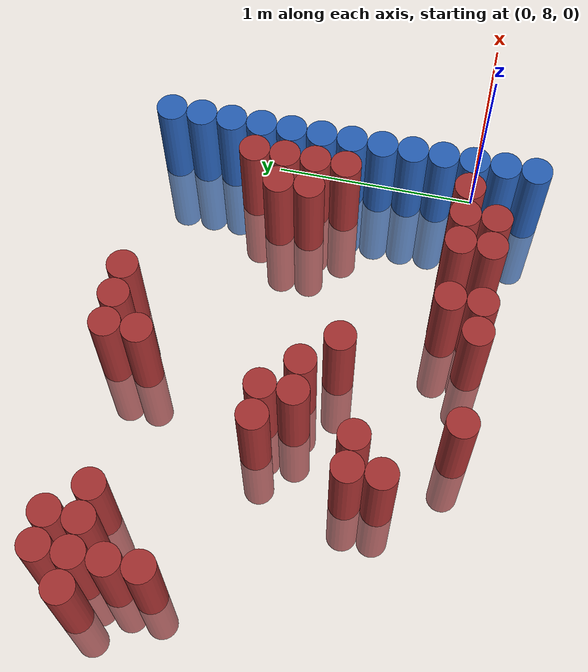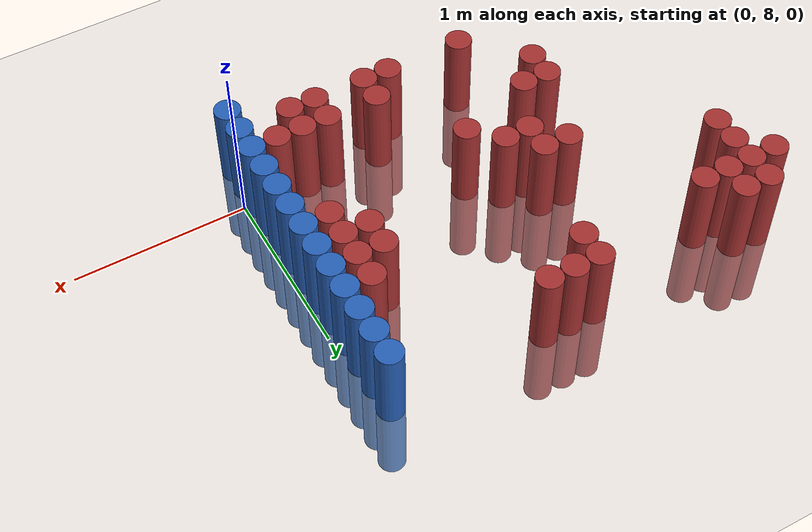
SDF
<sdf version="1.6">
 <world name="default">
  <model name="ground_plane">
   <static>1</static>
   <link name="link">
    <collision name="collision">
     <geometry><plane><normal>0 0 1</normal><size>100 100</size></plane></geometry>
     <surface><friction><ode><mu>100</mu><mu2>50</mu2></ode></friction></surface>
    </collision>
    <visual name="visual">
     <cast_shadows>0</cast_shadows>
     <geometry><plane><normal>0 0 1</normal><size>100 100</size></plane></geometry>
     <material>
      <script><uri>file://media/materials/scripts/gazebo.material</uri><name>Gazebo/Grey</name></script>
     </material>
    </visual>
   </link>
  </model>
  <model name="unit_cylinder_215">
   <static>1</static>
   <pose>-2.475000 9.375000 0.000000 0.000000 0.000000 0.000000</pose>
   <link name="link">
    <inertial>
     <mass>1</mass>
     <inertia><ixx>0.145833</ixx><ixy>0</ixy><ixz>0</ixz><iyy>0.145833</iyy><iyz>0</iyz><izz>0.125</izz></inertia>
    </inertial>
    <collision name="collision">
     <geometry><cylinder><radius>0.075000</radius><length>1</length></cylinder></geometry>
    </collision>
    <visual name="visual">
     <geometry><cylinder><radius>0.075000</radius><length>1</length></cylinder></geometry>
     <material>
      <ambient>0.648000 0.192000 0.192000 1</ambient>
      <diffuse>0.648000 0.192000 0.192000 1</diffuse>
     </material>
     <material>
      <script><name>Gazebo/Grey</name><uri>file://media/materials/scripts/gazebo.material</uri></script>
     </material>
    </visual>
   </link>
  </model>
  <model name="unit_cylinder_216">
   <static>1</static>
   <pose>-2.325000 9.075000 0.000000 0.000000 0.000000 0.000000</pose>
   <link name="link">
    <inertial>
     <mass>1</mass>
     <inertia><ixx>0.145833</ixx><ixy>0</ixy><ixz>0</ixz><iyy>0.145833</iyy><iyz>0</iyz><izz>0.125</izz></inertia>
    </inertial>
    <collision name="collision">
     <geometry><cylinder><radius>0.075000</radius><length>1</length></cylinder></geometry>
    </collision>
    <visual name="visual">
     <geometry><cylinder><radius>0.075000</radius><length>1</length></cylinder></geometry>
     <material>
      <ambient>0.648000 0.192000 0.192000 1</ambient>
      <diffuse>0.648000 0.192000 0.192000 1</diffuse>
     </material>
     <material>
      <script><name>Gazebo/Grey</name><uri>file://media/materials/scripts/gazebo.material</uri></script>
     </material>
    </visual>
   </link>
  </model>
  <model name="unit_cylinder_217">
   <static>1</static>
   <pose>-2.325000 9.225000 0.000000 0.000000 0.000000 0.000000</pose>
   <link name="link">
    <inertial>
     <mass>1</mass>
     <inertia><ixx>0.145833</ixx><ixy>0</ixy><ixz>0</ixz><iyy>0.145833</iyy><iyz>0</iyz><izz>0.125</izz></inertia>
    </inertial>
    <collision name="collision">
     <geometry><cylinder><radius>0.075000</radius><length>1</length></cylinder></geometry>
    </collision>
    <visual name="visual">
     <geometry><cylinder><radius>0.075000</radius><length>1</length></cylinder></geometry>
     <material>
      <ambient>0.648000 0.192000 0.192000 1</ambient>
      <diffuse>0.648000 0.192000 0.192000 1</diffuse>
     </material>
     <material>
      <script><name>Gazebo/Grey</name><uri>file://media/materials/scripts/gazebo.material</uri></script>
     </material>
    </visual>
   </link>
  </model>
  <model name="unit_cylinder_218">
   <static>1</static>
   <pose>-2.325000 9.375000 0.000000 0.000000 0.000000 0.000000</pose>
   <link name="link">
    <inertial>
     <mass>1</mass>
     <inertia><ixx>0.145833</ixx><ixy>0</ixy><ixz>0</ixz><iyy>0.145833</iyy><iyz>0</iyz><izz>0.125</izz></inertia>
    </inertial>
    <collision name="collision">
     <geometry><cylinder><radius>0.075000</radius><length>1</length></cylinder></geometry>
    </collision>
    <visual name="visual">
     <geometry><cylinder><radius>0.075000</radius><length>1</length></cylinder></geometry>
     <material>
      <ambient>0.648000 0.192000 0.192000 1</ambient>
      <diffuse>0.648000 0.192000 0.192000 1</diffuse>
     </material>
     <material>
      <script><name>Gazebo/Grey</name><uri>file://media/materials/scripts/gazebo.material</uri></script>
     </material>
    </visual>
   </link>
  </model>
  <model name="unit_cylinder_219">
   <static>1</static>
   <pose>-2.325000 9.525000 0.000000 0.000000 0.000000 0.000000</pose>
   <link name="link">
    <inertial>
     <mass>1</mass>
     <inertia><ixx>0.145833</ixx><ixy>0</ixy><ixz>0</ixz><iyy>0.145833</iyy><iyz>0</iyz><izz>0.125</izz></inertia>
    </inertial>
    <collision name="collision">
     <geometry><cylinder><radius>0.075000</radius><length>1</length></cylinder></geometry>
    </collision>
    <visual name="visual">
     <geometry><cylinder><radius>0.075000</radius><length>1</length></cylinder></geometry>
     <material>
      <ambient>0.648000 0.192000 0.192000 1</ambient>
      <diffuse>0.648000 0.192000 0.192000 1</diffuse>
     </material>
     <material>
      <script><name>Gazebo/Grey</name><uri>file://media/materials/scripts/gazebo.material</uri></script>
     </material>
    </visual>
   </link>
  </model>
  <model name="unit_cylinder_220">
   <static>1</static>
   <pose>-2.175000 9.375000 0.000000 0.000000 0.000000 0.000000</pose>
   <link name="link">
    <inertial>
     <mass>1</mass>
     <inertia><ixx>0.145833</ixx><ixy>0</ixy><ixz>0</ixz><iyy>0.145833</iyy><iyz>0</iyz><izz>0.125</izz></inertia>
    </inertial>
    <collision name="collision">
     <geometry><cylinder><radius>0.075000</radius><length>1</length></cylinder></geometry>
    </collision>
    <visual name="visual">
     <geometry><cylinder><radius>0.075000</radius><length>1</length></cylinder></geometry>
     <material>
      <ambient>0.648000 0.192000 0.192000 1</ambient>
      <diffuse>0.648000 0.192000 0.192000 1</diffuse>
     </material>
     <material>
      <script><name>Gazebo/Grey</name><uri>file://media/materials/scripts/gazebo.material</uri></script>
     </material>
    </visual>
   </link>
  </model>
  <model name="unit_cylinder_221">
   <static>1</static>
   <pose>-2.175000 9.525000 0.000000 0.000000 0.000000 0.000000</pose>
   <link name="link">
    <inertial>
     <mass>1</mass>
     <inertia><ixx>0.145833</ixx><ixy>0</ixy><ixz>0</ixz><iyy>0.145833</iyy><iyz>0</iyz><izz>0.125</izz></inertia>
    </inertial>
    <collision name="collision">
     <geometry><cylinder><radius>0.075000</radius><length>1</length></cylinder></geometry>
    </collision>
    <visual name="visual">
     <geometry><cylinder><radius>0.075000</radius><length>1</length></cylinder></geometry>
     <material>
      <ambient>0.648000 0.192000 0.192000 1</ambient>
      <diffuse>0.648000 0.192000 0.192000 1</diffuse>
     </material>
     <material>
      <script><name>Gazebo/Grey</name><uri>file://media/materials/scripts/gazebo.material</uri></script>
     </material>
    </visual>
   </link>
  </model>
  <model name="unit_cylinder_222">
   <static>1</static>
   <pose>-2.025000 9.375000 0.000000 0.000000 0.000000 0.000000</pose>
   <link name="link">
    <inertial>
     <mass>1</mass>
     <inertia><ixx>0.145833</ixx><ixy>0</ixy><ixz>0</ixz><iyy>0.145833</iyy><iyz>0</iyz><izz>0.125</izz></inertia>
    </inertial>
    <collision name="collision">
     <geometry><cylinder><radius>0.075000</radius><length>1</length></cylinder></geometry>
    </collision>
    <visual name="visual">
     <geometry><cylinder><radius>0.075000</radius><length>1</length></cylinder></geometry>
     <material>
      <ambient>0.648000 0.192000 0.192000 1</ambient>
      <diffuse>0.648000 0.192000 0.192000 1</diffuse>
     </material>
     <material>
      <script><name>Gazebo/Grey</name><uri>file://media/materials/scripts/gazebo.material</uri></script>
     </material>
    </visual>
   </link>
  </model>
  <model name="unit_cylinder_223">
   <static>1</static>
   <pose>-1.725000 8.175000 0.000000 0.000000 0.000000 0.000000</pose>
   <link name="link">
    <inertial>
     <mass>1</mass>
     <inertia><ixx>0.145833</ixx><ixy>0</ixy><ixz>0</ixz><iyy>0.145833</iyy><iyz>0</iyz><izz>0.125</izz></inertia>
    </inertial>
    <collision name="collision">
     <geometry><cylinder><radius>0.075000</radius><length>1</length></cylinder></geometry>
    </collision>
    <visual name="visual">
     <geometry><cylinder><radius>0.075000</radius><length>1</length></cylinder></geometry>
     <material>
      <ambient>0.648000 0.192000 0.192000 1</ambient>
      <diffuse>0.648000 0.192000 0.192000 1</diffuse>
     </material>
     <material>
      <script><name>Gazebo/Grey</name><uri>file://media/materials/scripts/gazebo.material</uri></script>
     </material>
    </visual>
   </link>
  </model>
  <model name="unit_cylinder_224">
   <static>1</static>
   <pose>-1.725000 8.325000 0.000000 0.000000 0.000000 0.000000</pose>
   <link name="link">
    <inertial>
     <mass>1</mass>
     <inertia><ixx>0.145833</ixx><ixy>0</ixy><ixz>0</ixz><iyy>0.145833</iyy><iyz>0</iyz><izz>0.125</izz></inertia>
    </inertial>
    <collision name="collision">
     <geometry><cylinder><radius>0.075000</radius><length>1</length></cylinder></geometry>
    </collision>
    <visual name="visual">
     <geometry><cylinder><radius>0.075000</radius><length>1</length></cylinder></geometry>
     <material>
      <ambient>0.648000 0.192000 0.192000 1</ambient>
      <diffuse>0.648000 0.192000 0.192000 1</diffuse>
     </material>
     <material>
      <script><name>Gazebo/Grey</name><uri>file://media/materials/scripts/gazebo.material</uri></script>
     </material>
    </visual>
   </link>
  </model>
  <model name="unit_cylinder_228">
   <static>1</static>
   <pose>-1.575000 8.325000 0.000000 0.000000 0.000000 0.000000</pose>
   <link name="link">
    <inertial>
     <mass>1</mass>
     <inertia><ixx>0.145833</ixx><ixy>0</ixy><ixz>0</ixz><iyy>0.145833</iyy><iyz>0</iyz><izz>0.125</izz></inertia>
    </inertial>
    <collision name="collision">
     <geometry><cylinder><radius>0.075000</radius><length>1</length></cylinder></geometry>
    </collision>
    <visual name="visual">
     <geometry><cylinder><radius>0.075000</radius><length>1</length></cylinder></geometry>
     <material>
      <ambient>0.648000 0.192000 0.192000 1</ambient>
      <diffuse>0.648000 0.192000 0.192000 1</diffuse>
     </material>
     <material>
      <script><name>Gazebo/Grey</name><uri>file://media/materials/scripts/gazebo.material</uri></script>
     </material>
    </visual>
   </link>
  </model>
  <model name="unit_cylinder_229">
   <static>1</static>
   <pose>-1.575000 8.775000 0.000000 0.000000 0.000000 0.000000</pose>
   <link name="link">
    <inertial>
     <mass>1</mass>
     <inertia><ixx>0.145833</ixx><ixy>0</ixy><ixz>0</ixz><iyy>0.145833</iyy><iyz>0</iyz><izz>0.125</izz></inertia>
    </inertial>
    <collision name="collision">
     <geometry><cylinder><radius>0.075000</radius><length>1</length></cylinder></geometry>
    </collision>
    <visual name="visual">
     <geometry><cylinder><radius>0.075000</radius><length>1</length></cylinder></geometry>
     <material>
      <ambient>0.648000 0.192000 0.192000 1</ambient>
      <diffuse>0.648000 0.192000 0.192000 1</diffuse>
     </material>
     <material>
      <script><name>Gazebo/Grey</name><uri>file://media/materials/scripts/gazebo.material</uri></script>
     </material>
    </visual>
   </link>
  </model>
  <model name="unit_cylinder_234">
   <static>1</static>
   <pose>-1.425000 7.875000 0.000000 0.000000 0.000000 0.000000</pose>
   <link name="link">
    <inertial>
     <mass>1</mass>
     <inertia><ixx>0.145833</ixx><ixy>0</ixy><ixz>0</ixz><iyy>0.145833</iyy><iyz>0</iyz><izz>0.125</izz></inertia>
    </inertial>
    <collision name="collision">
     <geometry><cylinder><radius>0.075000</radius><length>1</length></cylinder></geometry>
    </collision>
    <visual name="visual">
     <geometry><cylinder><radius>0.075000</radius><length>1</length></cylinder></geometry>
     <material>
      <ambient>0.648000 0.192000 0.192000 1</ambient>
      <diffuse>0.648000 0.192000 0.192000 1</diffuse>
     </material>
     <material>
      <script><name>Gazebo/Grey</name><uri>file://media/materials/scripts/gazebo.material</uri></script>
     </material>
    </visual>
   </link>
  </model>
  <model name="unit_cylinder_235">
   <static>1</static>
   <pose>-1.425000 8.625000 0.000000 0.000000 0.000000 0.000000</pose>
   <link name="link">
    <inertial>
     <mass>1</mass>
     <inertia><ixx>0.145833</ixx><ixy>0</ixy><ixz>0</ixz><iyy>0.145833</iyy><iyz>0</iyz><izz>0.125</izz></inertia>
    </inertial>
    <collision name="collision">
     <geometry><cylinder><radius>0.075000</radius><length>1</length></cylinder></geometry>
    </collision>
    <visual name="visual">
     <geometry><cylinder><radius>0.075000</radius><length>1</length></cylinder></geometry>
     <material>
      <ambient>0.648000 0.192000 0.192000 1</ambient>
      <diffuse>0.648000 0.192000 0.192000 1</diffuse>
     </material>
     <material>
      <script><name>Gazebo/Grey</name><uri>file://media/materials/scripts/gazebo.material</uri></script>
     </material>
    </visual>
   </link>
  </model>
  <model name="unit_cylinder_236">
   <static>1</static>
   <pose>-1.425000 8.775000 0.000000 0.000000 0.000000 0.000000</pose>
   <link name="link">
    <inertial>
     <mass>1</mass>
     <inertia><ixx>0.145833</ixx><ixy>0</ixy><ixz>0</ixz><iyy>0.145833</iyy><iyz>0</iyz><izz>0.125</izz></inertia>
    </inertial>
    <collision name="collision">
     <geometry><cylinder><radius>0.075000</radius><length>1</length></cylinder></geometry>
    </collision>
    <visual name="visual">
     <geometry><cylinder><radius>0.075000</radius><length>1</length></cylinder></geometry>
     <material>
      <ambient>0.648000 0.192000 0.192000 1</ambient>
      <diffuse>0.648000 0.192000 0.192000 1</diffuse>
     </material>
     <material>
      <script><name>Gazebo/Grey</name><uri>file://media/materials/scripts/gazebo.material</uri></script>
     </material>
    </visual>
   </link>
  </model>
  <model name="unit_cylinder_243">
   <static>1</static>
   <pose>-1.275000 8.625000 0.000000 0.000000 0.000000 0.000000</pose>
   <link name="link">
    <inertial>
     <mass>1</mass>
     <inertia><ixx>0.145833</ixx><ixy>0</ixy><ixz>0</ixz><iyy>0.145833</iyy><iyz>0</iyz><izz>0.125</izz></inertia>
    </inertial>
    <collision name="collision">
     <geometry><cylinder><radius>0.075000</radius><length>1</length></cylinder></geometry>
    </collision>
    <visual name="visual">
     <geometry><cylinder><radius>0.075000</radius><length>1</length></cylinder></geometry>
     <material>
      <ambient>0.648000 0.192000 0.192000 1</ambient>
      <diffuse>0.648000 0.192000 0.192000 1</diffuse>
     </material>
     <material>
      <script><name>Gazebo/Grey</name><uri>file://media/materials/scripts/gazebo.material</uri></script>
     </material>
    </visual>
   </link>
  </model>
  <model name="unit_cylinder_244">
   <static>1</static>
   <pose>-1.275000 9.375000 0.000000 0.000000 0.000000 0.000000</pose>
   <link name="link">
    <inertial>
     <mass>1</mass>
     <inertia><ixx>0.145833</ixx><ixy>0</ixy><ixz>0</ixz><iyy>0.145833</iyy><iyz>0</iyz><izz>0.125</izz></inertia>
    </inertial>
    <collision name="collision">
     <geometry><cylinder><radius>0.075000</radius><length>1</length></cylinder></geometry>
    </collision>
    <visual name="visual">
     <geometry><cylinder><radius>0.075000</radius><length>1</length></cylinder></geometry>
     <material>
      <ambient>0.648000 0.192000 0.192000 1</ambient>
      <diffuse>0.648000 0.192000 0.192000 1</diffuse>
     </material>
     <material>
      <script><name>Gazebo/Grey</name><uri>file://media/materials/scripts/gazebo.material</uri></script>
     </material>
    </visual>
   </link>
  </model>
  <model name="unit_cylinder_245">
   <static>1</static>
   <pose>-1.275000 9.525000 0.000000 0.000000 0.000000 0.000000</pose>
   <link name="link">
    <inertial>
     <mass>1</mass>
     <inertia><ixx>0.145833</ixx><ixy>0</ixy><ixz>0</ixz><iyy>0.145833</iyy><iyz>0</iyz><izz>0.125</izz></inertia>
    </inertial>
    <collision name="collision">
     <geometry><cylinder><radius>0.075000</radius><length>1</length></cylinder></geometry>
    </collision>
    <visual name="visual">
     <geometry><cylinder><radius>0.075000</radius><length>1</length></cylinder></geometry>
     <material>
      <ambient>0.648000 0.192000 0.192000 1</ambient>
      <diffuse>0.648000 0.192000 0.192000 1</diffuse>
     </material>
     <material>
      <script><name>Gazebo/Grey</name><uri>file://media/materials/scripts/gazebo.material</uri></script>
     </material>
    </visual>
   </link>
  </model>
  <model name="unit_cylinder_251">
   <static>1</static>
   <pose>-1.125000 8.475000 0.000000 0.000000 0.000000 0.000000</pose>
   <link name="link">
    <inertial>
     <mass>1</mass>
     <inertia><ixx>0.145833</ixx><ixy>0</ixy><ixz>0</ixz><iyy>0.145833</iyy><iyz>0</iyz><izz>0.125</izz></inertia>
    </inertial>
    <collision name="collision">
     <geometry><cylinder><radius>0.075000</radius><length>1</length></cylinder></geometry>
    </collision>
    <visual name="visual">
     <geometry><cylinder><radius>0.075000</radius><length>1</length></cylinder></geometry>
     <material>
      <ambient>0.648000 0.192000 0.192000 1</ambient>
      <diffuse>0.648000 0.192000 0.192000 1</diffuse>
     </material>
     <material>
      <script><name>Gazebo/Grey</name><uri>file://media/materials/scripts/gazebo.material</uri></script>
     </material>
    </visual>
   </link>
  </model>
  <model name="unit_cylinder_252">
   <static>1</static>
   <pose>-1.125000 9.525000 0.000000 0.000000 0.000000 0.000000</pose>
   <link name="link">
    <inertial>
     <mass>1</mass>
     <inertia><ixx>0.145833</ixx><ixy>0</ixy><ixz>0</ixz><iyy>0.145833</iyy><iyz>0</iyz><izz>0.125</izz></inertia>
    </inertial>
    <collision name="collision">
     <geometry><cylinder><radius>0.075000</radius><length>1</length></cylinder></geometry>
    </collision>
    <visual name="visual">
     <geometry><cylinder><radius>0.075000</radius><length>1</length></cylinder></geometry>
     <material>
      <ambient>0.648000 0.192000 0.192000 1</ambient>
      <diffuse>0.648000 0.192000 0.192000 1</diffuse>
     </material>
     <material>
      <script><name>Gazebo/Grey</name><uri>file://media/materials/scripts/gazebo.material</uri></script>
     </material>
    </visual>
   </link>
  </model>
  <model name="unit_cylinder_262">
   <static>1</static>
   <pose>-0.975000 7.875000 0.000000 0.000000 0.000000 0.000000</pose>
   <link name="link">
    <inertial>
     <mass>1</mass>
     <inertia><ixx>0.145833</ixx><ixy>0</ixy><ixz>0</ixz><iyy>0.145833</iyy><iyz>0</iyz><izz>0.125</izz></inertia>
    </inertial>
    <collision name="collision">
     <geometry><cylinder><radius>0.075000</radius><length>1</length></cylinder></geometry>
    </collision>
    <visual name="visual">
     <geometry><cylinder><radius>0.075000</radius><length>1</length></cylinder></geometry>
     <material>
      <ambient>0.648000 0.192000 0.192000 1</ambient>
      <diffuse>0.648000 0.192000 0.192000 1</diffuse>
     </material>
     <material>
      <script><name>Gazebo/Grey</name><uri>file://media/materials/scripts/gazebo.material</uri></script>
     </material>
    </visual>
   </link>
  </model>
  <model name="unit_cylinder_263">
   <static>1</static>
   <pose>-0.975000 9.525000 0.000000 0.000000 0.000000 0.000000</pose>
   <link name="link">
    <inertial>
     <mass>1</mass>
     <inertia><ixx>0.145833</ixx><ixy>0</ixy><ixz>0</ixz><iyy>0.145833</iyy><iyz>0</iyz><izz>0.125</izz></inertia>
    </inertial>
    <collision name="collision">
     <geometry><cylinder><radius>0.075000</radius><length>1</length></cylinder></geometry>
    </collision>
    <visual name="visual">
     <geometry><cylinder><radius>0.075000</radius><length>1</length></cylinder></geometry>
     <material>
      <ambient>0.648000 0.192000 0.192000 1</ambient>
      <diffuse>0.648000 0.192000 0.192000 1</diffuse>
     </material>
     <material>
      <script><name>Gazebo/Grey</name><uri>file://media/materials/scripts/gazebo.material</uri></script>
     </material>
    </visual>
   </link>
  </model>
  <model name="unit_cylinder_269">
   <static>1</static>
   <pose>-0.825000 7.875000 0.000000 0.000000 0.000000 0.000000</pose>
   <link name="link">
    <inertial>
     <mass>1</mass>
     <inertia><ixx>0.145833</ixx><ixy>0</ixy><ixz>0</ixz><iyy>0.145833</iyy><iyz>0</iyz><izz>0.125</izz></inertia>
    </inertial>
    <collision name="collision">
     <geometry><cylinder><radius>0.075000</radius><length>1</length></cylinder></geometry>
    </collision>
    <visual name="visual">
     <geometry><cylinder><radius>0.075000</radius><length>1</length></cylinder></geometry>
     <material>
      <ambient>0.648000 0.192000 0.192000 1</ambient>
      <diffuse>0.648000 0.192000 0.192000 1</diffuse>
     </material>
     <material>
      <script><name>Gazebo/Grey</name><uri>file://media/materials/scripts/gazebo.material</uri></script>
     </material>
    </visual>
   </link>
  </model>
  <model name="unit_cylinder_270">
   <static>1</static>
   <pose>-0.825000 8.025000 0.000000 0.000000 0.000000 0.000000</pose>
   <link name="link">
    <inertial>
     <mass>1</mass>
     <inertia><ixx>0.145833</ixx><ixy>0</ixy><ixz>0</ixz><iyy>0.145833</iyy><iyz>0</iyz><izz>0.125</izz></inertia>
    </inertial>
    <collision name="collision">
     <geometry><cylinder><radius>0.075000</radius><length>1</length></cylinder></geometry>
    </collision>
    <visual name="visual">
     <geometry><cylinder><radius>0.075000</radius><length>1</length></cylinder></geometry>
     <material>
      <ambient>0.648000 0.192000 0.192000 1</ambient>
      <diffuse>0.648000 0.192000 0.192000 1</diffuse>
     </material>
     <material>
      <script><name>Gazebo/Grey</name><uri>file://media/materials/scripts/gazebo.material</uri></script>
     </material>
    </visual>
   </link>
  </model>
  <model name="unit_cylinder_280">
   <static>1</static>
   <pose>-0.525000 7.875000 0.000000 0.000000 0.000000 0.000000</pose>
   <link name="link">
    <inertial>
     <mass>1</mass>
     <inertia><ixx>0.145833</ixx><ixy>0</ixy><ixz>0</ixz><iyy>0.145833</iyy><iyz>0</iyz><izz>0.125</izz></inertia>
    </inertial>
    <collision name="collision">
     <geometry><cylinder><radius>0.075000</radius><length>1</length></cylinder></geometry>
    </collision>
    <visual name="visual">
     <geometry><cylinder><radius>0.075000</radius><length>1</length></cylinder></geometry>
     <material>
      <ambient>0.648000 0.192000 0.192000 1</ambient>
      <diffuse>0.648000 0.192000 0.192000 1</diffuse>
     </material>
     <material>
      <script><name>Gazebo/Grey</name><uri>file://media/materials/scripts/gazebo.material</uri></script>
     </material>
    </visual>
   </link>
  </model>
  <model name="unit_cylinder_281">
   <static>1</static>
   <pose>-0.525000 8.025000 0.000000 0.000000 0.000000 0.000000</pose>
   <link name="link">
    <inertial>
     <mass>1</mass>
     <inertia><ixx>0.145833</ixx><ixy>0</ixy><ixz>0</ixz><iyy>0.145833</iyy><iyz>0</iyz><izz>0.125</izz></inertia>
    </inertial>
    <collision name="collision">
     <geometry><cylinder><radius>0.075000</radius><length>1</length></cylinder></geometry>
    </collision>
    <visual name="visual">
     <geometry><cylinder><radius>0.075000</radius><length>1</length></cylinder></geometry>
     <material>
      <ambient>0.648000 0.192000 0.192000 1</ambient>
      <diffuse>0.648000 0.192000 0.192000 1</diffuse>
     </material>
     <material>
      <script><name>Gazebo/Grey</name><uri>file://media/materials/scripts/gazebo.material</uri></script>
     </material>
    </visual>
   </link>
  </model>
  <model name="unit_cylinder_286">
   <static>1</static>
   <pose>-0.375000 7.875000 0.000000 0.000000 0.000000 0.000000</pose>
   <link name="link">
    <inertial>
     <mass>1</mass>
     <inertia><ixx>0.145833</ixx><ixy>0</ixy><ixz>0</ixz><iyy>0.145833</iyy><iyz>0</iyz><izz>0.125</izz></inertia>
    </inertial>
    <collision name="collision">
     <geometry><cylinder><radius>0.075000</radius><length>1</length></cylinder></geometry>
    </collision>
    <visual name="visual">
     <geometry><cylinder><radius>0.075000</radius><length>1</length></cylinder></geometry>
     <material>
      <ambient>0.648000 0.192000 0.192000 1</ambient>
      <diffuse>0.648000 0.192000 0.192000 1</diffuse>
     </material>
     <material>
      <script><name>Gazebo/Grey</name><uri>file://media/materials/scripts/gazebo.material</uri></script>
     </material>
    </visual>
   </link>
  </model>
  <model name="unit_cylinder_287">
   <static>1</static>
   <pose>-0.375000 8.025000 0.000000 0.000000 0.000000 0.000000</pose>
   <link name="link">
    <inertial>
     <mass>1</mass>
     <inertia><ixx>0.145833</ixx><ixy>0</ixy><ixz>0</ixz><iyy>0.145833</iyy><iyz>0</iyz><izz>0.125</izz></inertia>
    </inertial>
    <collision name="collision">
     <geometry><cylinder><radius>0.075000</radius><length>1</length></cylinder></geometry>
    </collision>
    <visual name="visual">
     <geometry><cylinder><radius>0.075000</radius><length>1</length></cylinder></geometry>
     <material>
      <ambient>0.648000 0.192000 0.192000 1</ambient>
      <diffuse>0.648000 0.192000 0.192000 1</diffuse>
     </material>
     <material>
      <script><name>Gazebo/Grey</name><uri>file://media/materials/scripts/gazebo.material</uri></script>
     </material>
    </visual>
   </link>
  </model>
  <model name="unit_cylinder_288">
   <static>1</static>
   <pose>-0.375000 8.775000 0.000000 0.000000 0.000000 0.000000</pose>
   <link name="link">
    <inertial>
     <mass>1</mass>
     <inertia><ixx>0.145833</ixx><ixy>0</ixy><ixz>0</ixz><iyy>0.145833</iyy><iyz>0</iyz><izz>0.125</izz></inertia>
    </inertial>
    <collision name="collision">
     <geometry><cylinder><radius>0.075000</radius><length>1</length></cylinder></geometry>
    </collision>
    <visual name="visual">
     <geometry><cylinder><radius>0.075000</radius><length>1</length></cylinder></geometry>
     <material>
      <ambient>0.648000 0.192000 0.192000 1</ambient>
      <diffuse>0.648000 0.192000 0.192000 1</diffuse>
     </material>
     <material>
      <script><name>Gazebo/Grey</name><uri>file://media/materials/scripts/gazebo.material</uri></script>
     </material>
    </visual>
   </link>
  </model>
  <model name="unit_cylinder_289">
   <static>1</static>
   <pose>-0.375000 8.925000 0.000000 0.000000 0.000000 0.000000</pose>
   <link name="link">
    <inertial>
     <mass>1</mass>
     <inertia><ixx>0.145833</ixx><ixy>0</ixy><ixz>0</ixz><iyy>0.145833</iyy><iyz>0</iyz><izz>0.125</izz></inertia>
    </inertial>
    <collision name="collision">
     <geometry><cylinder><radius>0.075000</radius><length>1</length></cylinder></geometry>
    </collision>
    <visual name="visual">
     <geometry><cylinder><radius>0.075000</radius><length>1</length></cylinder></geometry>
     <material>
      <ambient>0.648000 0.192000 0.192000 1</ambient>
      <diffuse>0.648000 0.192000 0.192000 1</diffuse>
     </material>
     <material>
      <script><name>Gazebo/Grey</name><uri>file://media/materials/scripts/gazebo.material</uri></script>
     </material>
    </visual>
   </link>
  </model>
  <model name="unit_cylinder_299">
   <static>1</static>
   <pose>-0.225000 8.025000 0.000000 0.000000 0.000000 0.000000</pose>
   <link name="link">
    <inertial>
     <mass>1</mass>
     <inertia><ixx>0.145833</ixx><ixy>0</ixy><ixz>0</ixz><iyy>0.145833</iyy><iyz>0</iyz><izz>0.125</izz></inertia>
    </inertial>
    <collision name="collision">
     <geometry><cylinder><radius>0.075000</radius><length>1</length></cylinder></geometry>
    </collision>
    <visual name="visual">
     <geometry><cylinder><radius>0.075000</radius><length>1</length></cylinder></geometry>
     <material>
      <ambient>0.648000 0.192000 0.192000 1</ambient>
      <diffuse>0.648000 0.192000 0.192000 1</diffuse>
     </material>
     <material>
      <script><name>Gazebo/Grey</name><uri>file://media/materials/scripts/gazebo.material</uri></script>
     </material>
    </visual>
   </link>
  </model>
  <model name="unit_cylinder_300">
   <static>1</static>
   <pose>-0.225000 8.625000 0.000000 0.000000 0.000000 0.000000</pose>
   <link name="link">
    <inertial>
     <mass>1</mass>
     <inertia><ixx>0.145833</ixx><ixy>0</ixy><ixz>0</ixz><iyy>0.145833</iyy><iyz>0</iyz><izz>0.125</izz></inertia>
    </inertial>
    <collision name="collision">
     <geometry><cylinder><radius>0.075000</radius><length>1</length></cylinder></geometry>
    </collision>
    <visual name="visual">
     <geometry><cylinder><radius>0.075000</radius><length>1</length></cylinder></geometry>
     <material>
      <ambient>0.648000 0.192000 0.192000 1</ambient>
      <diffuse>0.648000 0.192000 0.192000 1</diffuse>
     </material>
     <material>
      <script><name>Gazebo/Grey</name><uri>file://media/materials/scripts/gazebo.material</uri></script>
     </material>
    </visual>
   </link>
  </model>
  <model name="unit_cylinder_301">
   <static>1</static>
   <pose>-0.225000 8.775000 0.000000 0.000000 0.000000 0.000000</pose>
   <link name="link">
    <inertial>
     <mass>1</mass>
     <inertia><ixx>0.145833</ixx><ixy>0</ixy><ixz>0</ixz><iyy>0.145833</iyy><iyz>0</iyz><izz>0.125</izz></inertia>
    </inertial>
    <collision name="collision">
     <geometry><cylinder><radius>0.075000</radius><length>1</length></cylinder></geometry>
    </collision>
    <visual name="visual">
     <geometry><cylinder><radius>0.075000</radius><length>1</length></cylinder></geometry>
     <material>
      <ambient>0.648000 0.192000 0.192000 1</ambient>
      <diffuse>0.648000 0.192000 0.192000 1</diffuse>
     </material>
     <material>
      <script><name>Gazebo/Grey</name><uri>file://media/materials/scripts/gazebo.material</uri></script>
     </material>
    </visual>
   </link>
  </model>
  <model name="unit_cylinder_302">
   <static>1</static>
   <pose>-0.225000 8.925000 0.000000 0.000000 0.000000 0.000000</pose>
   <link name="link">
    <inertial>
     <mass>1</mass>
     <inertia><ixx>0.145833</ixx><ixy>0</ixy><ixz>0</ixz><iyy>0.145833</iyy><iyz>0</iyz><izz>0.125</izz></inertia>
    </inertial>
    <collision name="collision">
     <geometry><cylinder><radius>0.075000</radius><length>1</length></cylinder></geometry>
    </collision>
    <visual name="visual">
     <geometry><cylinder><radius>0.075000</radius><length>1</length></cylinder></geometry>
     <material>
      <ambient>0.648000 0.192000 0.192000 1</ambient>
      <diffuse>0.648000 0.192000 0.192000 1</diffuse>
     </material>
     <material>
      <script><name>Gazebo/Grey</name><uri>file://media/materials/scripts/gazebo.material</uri></script>
     </material>
    </visual>
   </link>
  </model>
  <model name="unit_cylinder_303">
   <static>1</static>
   <pose>-0.225000 9.075000 0.000000 0.000000 0.000000 0.000000</pose>
   <link name="link">
    <inertial>
     <mass>1</mass>
     <inertia><ixx>0.145833</ixx><ixy>0</ixy><ixz>0</ixz><iyy>0.145833</iyy><iyz>0</iyz><izz>0.125</izz></inertia>
    </inertial>
    <collision name="collision">
     <geometry><cylinder><radius>0.075000</radius><length>1</length></cylinder></geometry>
    </collision>
    <visual name="visual">
     <geometry><cylinder><radius>0.075000</radius><length>1</length></cylinder></geometry>
     <material>
      <ambient>0.648000 0.192000 0.192000 1</ambient>
      <diffuse>0.648000 0.192000 0.192000 1</diffuse>
     </material>
     <material>
      <script><name>Gazebo/Grey</name><uri>file://media/materials/scripts/gazebo.material</uri></script>
     </material>
    </visual>
   </link>
  </model>
  <model name="unit_cylinder_321">
   <static>1</static>
   <pose>-0.075000 7.725000 0.000000 0.000000 0.000000 0.000000</pose>
   <link name="link">
    <inertial>
     <mass>1</mass>
     <inertia><ixx>0.145833</ixx><ixy>0</ixy><ixz>0</ixz><iyy>0.145833</iyy><iyz>0</iyz><izz>0.125</izz></inertia>
    </inertial>
    <collision name="collision">
     <geometry><cylinder><radius>0.075000</radius><length>1</length></cylinder></geometry>
    </collision>
    <visual name="visual">
     <geometry><cylinder><radius>0.075000</radius><length>1</length></cylinder></geometry>
     <material>
      <ambient>0.152000 0.379000 0.720000 1</ambient>
      <diffuse>0.152000 0.379000 0.720000 1</diffuse>
     </material>
     <material>
      <script><name>Gazebo/Grey</name><uri>file://media/materials/scripts/gazebo.material</uri></script>
     </material>
    </visual>
   </link>
  </model>
  <model name="unit_cylinder_322">
   <static>1</static>
   <pose>-0.075000 7.875000 0.000000 0.000000 0.000000 0.000000</pose>
   <link name="link">
    <inertial>
     <mass>1</mass>
     <inertia><ixx>0.145833</ixx><ixy>0</ixy><ixz>0</ixz><iyy>0.145833</iyy><iyz>0</iyz><izz>0.125</izz></inertia>
    </inertial>
    <collision name="collision">
     <geometry><cylinder><radius>0.075000</radius><length>1</length></cylinder></geometry>
    </collision>
    <visual name="visual">
     <geometry><cylinder><radius>0.075000</radius><length>1</length></cylinder></geometry>
     <material>
      <ambient>0.152000 0.379000 0.720000 1</ambient>
      <diffuse>0.152000 0.379000 0.720000 1</diffuse>
     </material>
     <material>
      <script><name>Gazebo/Grey</name><uri>file://media/materials/scripts/gazebo.material</uri></script>
     </material>
    </visual>
   </link>
  </model>
  <model name="unit_cylinder_323">
   <static>1</static>
   <pose>-0.075000 8.025000 0.000000 0.000000 0.000000 0.000000</pose>
   <link name="link">
    <inertial>
     <mass>1</mass>
     <inertia><ixx>0.145833</ixx><ixy>0</ixy><ixz>0</ixz><iyy>0.145833</iyy><iyz>0</iyz><izz>0.125</izz></inertia>
    </inertial>
    <collision name="collision">
     <geometry><cylinder><radius>0.075000</radius><length>1</length></cylinder></geometry>
    </collision>
    <visual name="visual">
     <geometry><cylinder><radius>0.075000</radius><length>1</length></cylinder></geometry>
     <material>
      <ambient>0.152000 0.379000 0.720000 1</ambient>
      <diffuse>0.152000 0.379000 0.720000 1</diffuse>
     </material>
     <material>
      <script><name>Gazebo/Grey</name><uri>file://media/materials/scripts/gazebo.material</uri></script>
     </material>
    </visual>
   </link>
  </model>
  <model name="unit_cylinder_324">
   <static>1</static>
   <pose>-0.075000 8.175000 0.000000 0.000000 0.000000 0.000000</pose>
   <link name="link">
    <inertial>
     <mass>1</mass>
     <inertia><ixx>0.145833</ixx><ixy>0</ixy><ixz>0</ixz><iyy>0.145833</iyy><iyz>0</iyz><izz>0.125</izz></inertia>
    </inertial>
    <collision name="collision">
     <geometry><cylinder><radius>0.075000</radius><length>1</length></cylinder></geometry>
    </collision>
    <visual name="visual">
     <geometry><cylinder><radius>0.075000</radius><length>1</length></cylinder></geometry>
     <material>
      <ambient>0.152000 0.379000 0.720000 1</ambient>
      <diffuse>0.152000 0.379000 0.720000 1</diffuse>
     </material>
     <material>
      <script><name>Gazebo/Grey</name><uri>file://media/materials/scripts/gazebo.material</uri></script>
     </material>
    </visual>
   </link>
  </model>
  <model name="unit_cylinder_325">
   <static>1</static>
   <pose>-0.075000 8.325000 0.000000 0.000000 0.000000 0.000000</pose>
   <link name="link">
    <inertial>
     <mass>1</mass>
     <inertia><ixx>0.145833</ixx><ixy>0</ixy><ixz>0</ixz><iyy>0.145833</iyy><iyz>0</iyz><izz>0.125</izz></inertia>
    </inertial>
    <collision name="collision">
     <geometry><cylinder><radius>0.075000</radius><length>1</length></cylinder></geometry>
    </collision>
    <visual name="visual">
     <geometry><cylinder><radius>0.075000</radius><length>1</length></cylinder></geometry>
     <material>
      <ambient>0.152000 0.379000 0.720000 1</ambient>
      <diffuse>0.152000 0.379000 0.720000 1</diffuse>
     </material>
     <material>
      <script><name>Gazebo/Grey</name><uri>file://media/materials/scripts/gazebo.material</uri></script>
     </material>
    </visual>
   </link>
  </model>
  <model name="unit_cylinder_326">
   <static>1</static>
   <pose>-0.075000 8.475000 0.000000 0.000000 0.000000 0.000000</pose>
   <link name="link">
    <inertial>
     <mass>1</mass>
     <inertia><ixx>0.145833</ixx><ixy>0</ixy><ixz>0</ixz><iyy>0.145833</iyy><iyz>0</iyz><izz>0.125</izz></inertia>
    </inertial>
    <collision name="collision">
     <geometry><cylinder><radius>0.075000</radius><length>1</length></cylinder></geometry>
    </collision>
    <visual name="visual">
     <geometry><cylinder><radius>0.075000</radius><length>1</length></cylinder></geometry>
     <material>
      <ambient>0.152000 0.379000 0.720000 1</ambient>
      <diffuse>0.152000 0.379000 0.720000 1</diffuse>
     </material>
     <material>
      <script><name>Gazebo/Grey</name><uri>file://media/materials/scripts/gazebo.material</uri></script>
     </material>
    </visual>
   </link>
  </model>
  <model name="unit_cylinder_327">
   <static>1</static>
   <pose>-0.075000 8.625000 0.000000 0.000000 0.000000 0.000000</pose>
   <link name="link">
    <inertial>
     <mass>1</mass>
     <inertia><ixx>0.145833</ixx><ixy>0</ixy><ixz>0</ixz><iyy>0.145833</iyy><iyz>0</iyz><izz>0.125</izz></inertia>
    </inertial>
    <collision name="collision">
     <geometry><cylinder><radius>0.075000</radius><length>1</length></cylinder></geometry>
    </collision>
    <visual name="visual">
     <geometry><cylinder><radius>0.075000</radius><length>1</length></cylinder></geometry>
     <material>
      <ambient>0.152000 0.379000 0.720000 1</ambient>
      <diffuse>0.152000 0.379000 0.720000 1</diffuse>
     </material>
     <material>
      <script><name>Gazebo/Grey</name><uri>file://media/materials/scripts/gazebo.material</uri></script>
     </material>
    </visual>
   </link>
  </model>
  <model name="unit_cylinder_328">
   <static>1</static>
   <pose>-0.075000 8.775000 0.000000 0.000000 0.000000 0.000000</pose>
   <link name="link">
    <inertial>
     <mass>1</mass>
     <inertia><ixx>0.145833</ixx><ixy>0</ixy><ixz>0</ixz><iyy>0.145833</iyy><iyz>0</iyz><izz>0.125</izz></inertia>
    </inertial>
    <collision name="collision">
     <geometry><cylinder><radius>0.075000</radius><length>1</length></cylinder></geometry>
    </collision>
    <visual name="visual">
     <geometry><cylinder><radius>0.075000</radius><length>1</length></cylinder></geometry>
     <material>
      <ambient>0.152000 0.379000 0.720000 1</ambient>
      <diffuse>0.152000 0.379000 0.720000 1</diffuse>
     </material>
     <material>
      <script><name>Gazebo/Grey</name><uri>file://media/materials/scripts/gazebo.material</uri></script>
     </material>
    </visual>
   </link>
  </model>
  <model name="unit_cylinder_329">
   <static>1</static>
   <pose>-0.075000 8.925000 0.000000 0.000000 0.000000 0.000000</pose>
   <link name="link">
    <inertial>
     <mass>1</mass>
     <inertia><ixx>0.145833</ixx><ixy>0</ixy><ixz>0</ixz><iyy>0.145833</iyy><iyz>0</iyz><izz>0.125</izz></inertia>
    </inertial>
    <collision name="collision">
     <geometry><cylinder><radius>0.075000</radius><length>1</length></cylinder></geometry>
    </collision>
    <visual name="visual">
     <geometry><cylinder><radius>0.075000</radius><length>1</length></cylinder></geometry>
     <material>
      <ambient>0.152000 0.379000 0.720000 1</ambient>
      <diffuse>0.152000 0.379000 0.720000 1</diffuse>
     </material>
     <material>
      <script><name>Gazebo/Grey</name><uri>file://media/materials/scripts/gazebo.material</uri></script>
     </material>
    </visual>
   </link>
  </model>
  <model name="unit_cylinder_330">
   <static>1</static>
   <pose>-0.075000 9.075000 0.000000 0.000000 0.000000 0.000000</pose>
   <link name="link">
    <inertial>
     <mass>1</mass>
     <inertia><ixx>0.145833</ixx><ixy>0</ixy><ixz>0</ixz><iyy>0.145833</iyy><iyz>0</iyz><izz>0.125</izz></inertia>
    </inertial>
    <collision name="collision">
     <geometry><cylinder><radius>0.075000</radius><length>1</length></cylinder></geometry>
    </collision>
    <visual name="visual">
     <geometry><cylinder><radius>0.075000</radius><length>1</length></cylinder></geometry>
     <material>
      <ambient>0.152000 0.379000 0.720000 1</ambient>
      <diffuse>0.152000 0.379000 0.720000 1</diffuse>
     </material>
     <material>
      <script><name>Gazebo/Grey</name><uri>file://media/materials/scripts/gazebo.material</uri></script>
     </material>
    </visual>
   </link>
  </model>
  <model name="unit_cylinder_331">
   <static>1</static>
   <pose>-0.075000 9.225000 0.000000 0.000000 0.000000 0.000000</pose>
   <link name="link">
    <inertial>
     <mass>1</mass>
     <inertia><ixx>0.145833</ixx><ixy>0</ixy><ixz>0</ixz><iyy>0.145833</iyy><iyz>0</iyz><izz>0.125</izz></inertia>
    </inertial>
    <collision name="collision">
     <geometry><cylinder><radius>0.075000</radius><length>1</length></cylinder></geometry>
    </collision>
    <visual name="visual">
     <geometry><cylinder><radius>0.075000</radius><length>1</length></cylinder></geometry>
     <material>
      <ambient>0.152000 0.379000 0.720000 1</ambient>
      <diffuse>0.152000 0.379000 0.720000 1</diffuse>
     </material>
     <material>
      <script><name>Gazebo/Grey</name><uri>file://media/materials/scripts/gazebo.material</uri></script>
     </material>
    </visual>
   </link>
  </model>
  <model name="unit_cylinder_332">
   <static>1</static>
   <pose>-0.075000 9.375000 0.000000 0.000000 0.000000 0.000000</pose>
   <link name="link">
    <inertial>
     <mass>1</mass>
     <inertia><ixx>0.145833</ixx><ixy>0</ixy><ixz>0</ixz><iyy>0.145833</iyy><iyz>0</iyz><izz>0.125</izz></inertia>
    </inertial>
    <collision name="collision">
     <geometry><cylinder><radius>0.075000</radius><length>1</length></cylinder></geometry>
    </collision>
    <visual name="visual">
     <geometry><cylinder><radius>0.075000</radius><length>1</length></cylinder></geometry>
     <material>
      <ambient>0.152000 0.379000 0.720000 1</ambient>
      <diffuse>0.152000 0.379000 0.720000 1</diffuse>
     </material>
     <material>
      <script><name>Gazebo/Grey</name><uri>file://media/materials/scripts/gazebo.material</uri></script>
     </material>
    </visual>
   </link>
  </model>
  <model name="unit_cylinder_333">
   <static>1</static>
   <pose>-0.075000 9.525000 0.000000 0.000000 0.000000 0.000000</pose>
   <link name="link">
    <inertial>
     <mass>1</mass>
     <inertia><ixx>0.145833</ixx><ixy>0</ixy><ixz>0</ixz><iyy>0.145833</iyy><iyz>0</iyz><izz>0.125</izz></inertia>
    </inertial>
    <collision name="collision">
     <geometry><cylinder><radius>0.075000</radius><length>1</length></cylinder></geometry>
    </collision>
    <visual name="visual">
     <geometry><cylinder><radius>0.075000</radius><length>1</length></cylinder></geometry>
     <material>
      <ambient>0.152000 0.379000 0.720000 1</ambient>
      <diffuse>0.152000 0.379000 0.720000 1</diffuse>
     </material>
     <material>
      <script><name>Gazebo/Grey</name><uri>file://media/materials/scripts/gazebo.material</uri></script>
     </material>
    </visual>
   </link>
  </model>
 </world>
</sdf>
